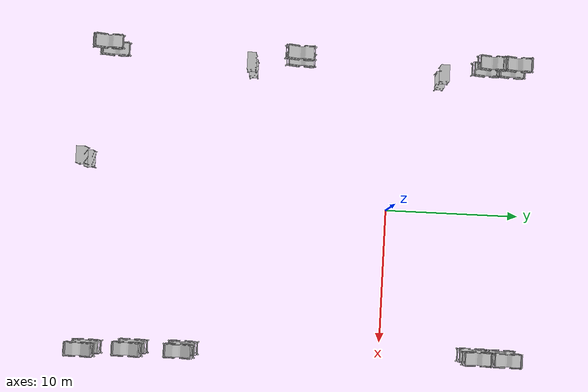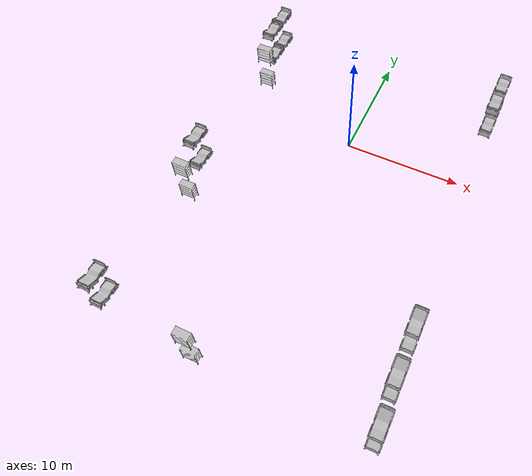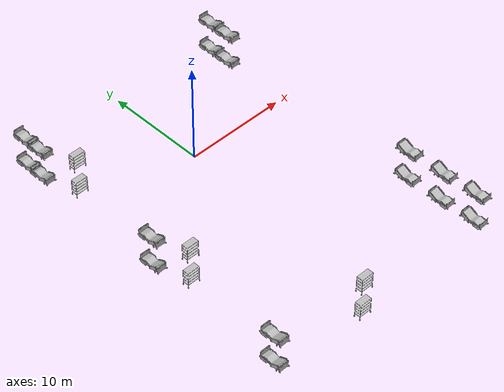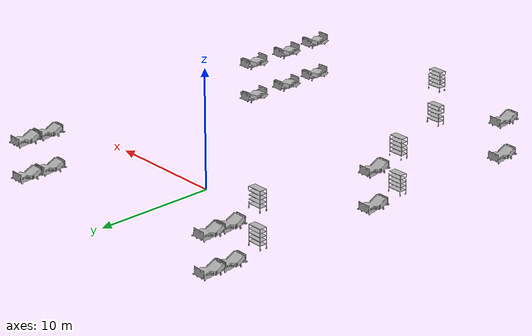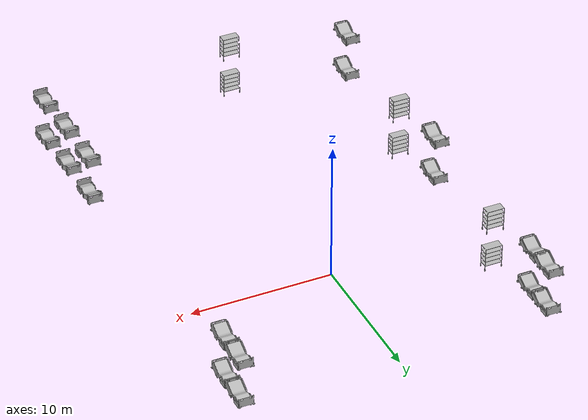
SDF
<sdf version="1.6">
 <world name="hospital_two_floors">
  <model name="CGMClassic_1">
   <include><uri>model://CGMClassic</uri></include>
   <pose>11.1777 -18.4129 0 0 0 -1.5656</pose>
  </model>
  <model name="CGMClassic_2">
   <include><uri>model://CGMClassic</uri></include>
   <pose>11.1179 -14.6493 0 0 0 -1.5656</pose>
  </model>
  <model name="CGMClassic_3">
   <include><uri>model://CGMClassic</uri></include>
   <pose>-11.2304 -21.1134 0 0 -0 1.56641</pose>
  </model>
  <model name="CGMClassic_4">
   <include><uri>model://CGMClassic</uri></include>
   <pose>-11.0878 -7.00992 0 0 -0 1.56296</pose>
  </model>
  <model name="CGMClassic_5">
   <include><uri>model://CGMClassic</uri></include>
   <pose>-11.0106 8.9505 -0.008203 0.0004 -0.035019 1.56285</pose>
  </model>
  <model name="CGMClassic_6">
   <include><uri>model://CGMClassic</uri></include>
   <pose>-11.025 7.10335 0 0 -0.035021 1.57427</pose>
  </model>
  <model name="StorageRack_2">
   <include><uri>model://StorageRack</uri></include>
   <pose>-2.69866 -22.4178 -0 0 -0 0</pose>
  </model>
  <model name="CGMClassic_7">
   <include><uri>model://CGMClassic</uri></include>
   <pose>10.6166 9.06291 -0.008203 0.0004 -0.035019 1.56285</pose>
  </model>
  <model name="CGMClassic_8">
   <include><uri>model://CGMClassic</uri></include>
   <pose>10.6006 6.90956 -0.008203 0.0004 -0.035019 1.56285</pose>
  </model>
  <model name="CGMClassic_9">
   <include><uri>model://CGMClassic</uri></include>
   <pose>11.3613 -21.8867 0 0 0 -1.5656</pose>
  </model>
  <model name="StorageRack_3">
   <include><uri>model://StorageRack</uri></include>
   <pose>-10.1178 -10.4694 -0 0 -0 0</pose>
  </model>
  <model name="StorageRack_4">
   <include><uri>model://StorageRack</uri></include>
   <pose>-9.91557 3.5644 -8e-06 0 3e-06 -0.000273</pose>
  </model>
  <model name="floor_1_CGMClassic_1">
   <include><uri>model://CGMClassic</uri></include>
   <pose>11.1777 -18.4129 3.0 0 0 -1.5656</pose>
  </model>
  <model name="floor_1_CGMClassic_2">
   <include><uri>model://CGMClassic</uri></include>
   <pose>11.1179 -14.6493 3.0 0 0 -1.5656</pose>
  </model>
  <model name="floor_1_CGMClassic_3">
   <include><uri>model://CGMClassic</uri></include>
   <pose>-11.2304 -21.1134 3.0 0 -0 1.56641</pose>
  </model>
  <model name="floor_1_CGMClassic_4">
   <include><uri>model://CGMClassic</uri></include>
   <pose>-11.0878 -7.00992 3.0 0 -0 1.56296</pose>
  </model>
  <model name="floor_1_CGMClassic_5">
   <include><uri>model://CGMClassic</uri></include>
   <pose>-11.0106 8.9505 2.991797 0.0004 -0.035019 1.56285</pose>
  </model>
  <model name="floor_1_CGMClassic_6">
   <include><uri>model://CGMClassic</uri></include>
   <pose>-11.025 7.10335 3.0 0 -0.035021 1.57427</pose>
  </model>
  <model name="floor_1_StorageRack_2">
   <include><uri>model://StorageRack</uri></include>
   <pose>-2.69866 -22.4178 3.0 0 -0 0</pose>
  </model>
  <model name="floor_1_CGMClassic_7">
   <include><uri>model://CGMClassic</uri></include>
   <pose>10.6166 9.06291 2.991797 0.0004 -0.035019 1.56285</pose>
  </model>
  <model name="floor_1_CGMClassic_8">
   <include><uri>model://CGMClassic</uri></include>
   <pose>10.6006 6.90956 2.991797 0.0004 -0.035019 1.56285</pose>
  </model>
  <model name="floor_1_CGMClassic_9">
   <include><uri>model://CGMClassic</uri></include>
   <pose>11.3613 -21.8867 3.0 0 0 -1.5656</pose>
  </model>
  <model name="floor_1_StorageRack_3">
   <include><uri>model://StorageRack</uri></include>
   <pose>-10.1178 -10.4694 3.0 0 -0 0</pose>
  </model>
  <model name="floor_1_StorageRack_4">
   <include><uri>model://StorageRack</uri></include>
   <pose>-9.91557 3.5644 2.999992 0 3e-06 -0.000273</pose>
  </model>
 </world>
</sdf>
